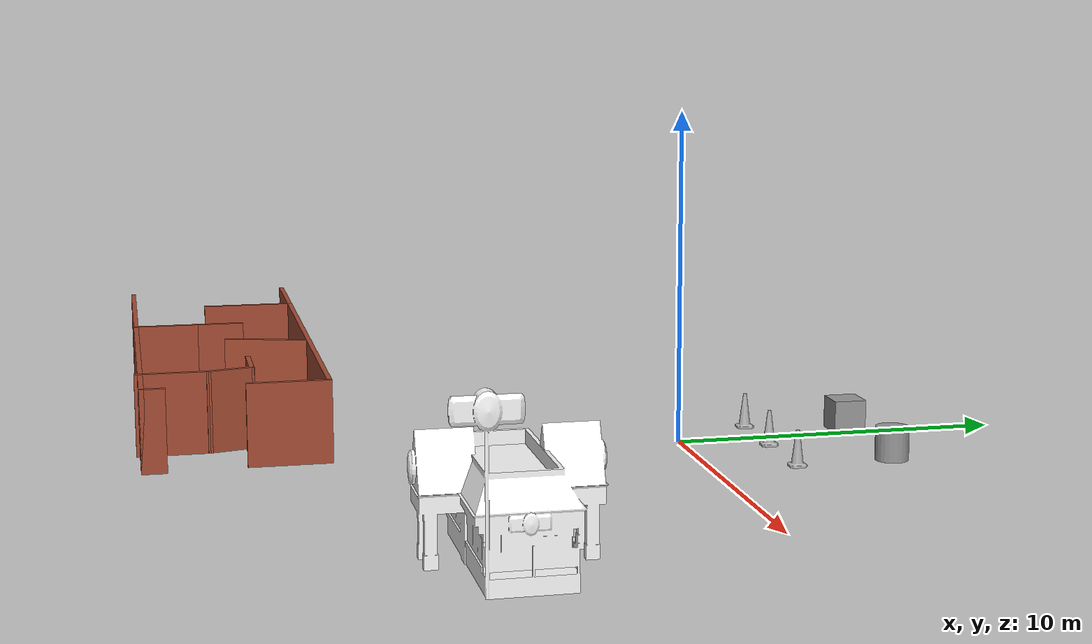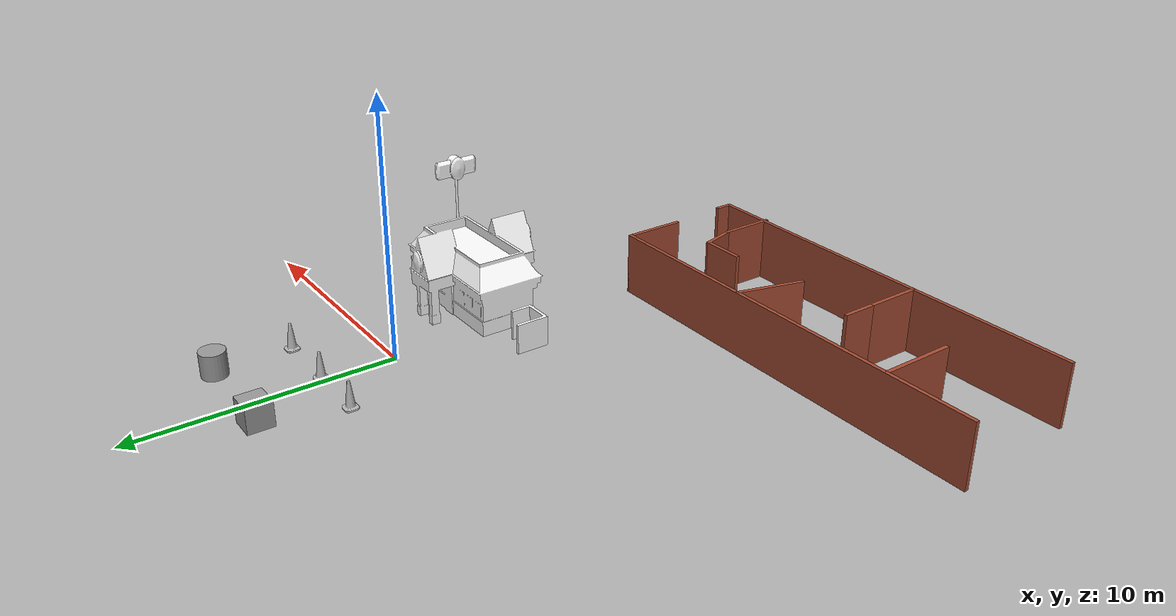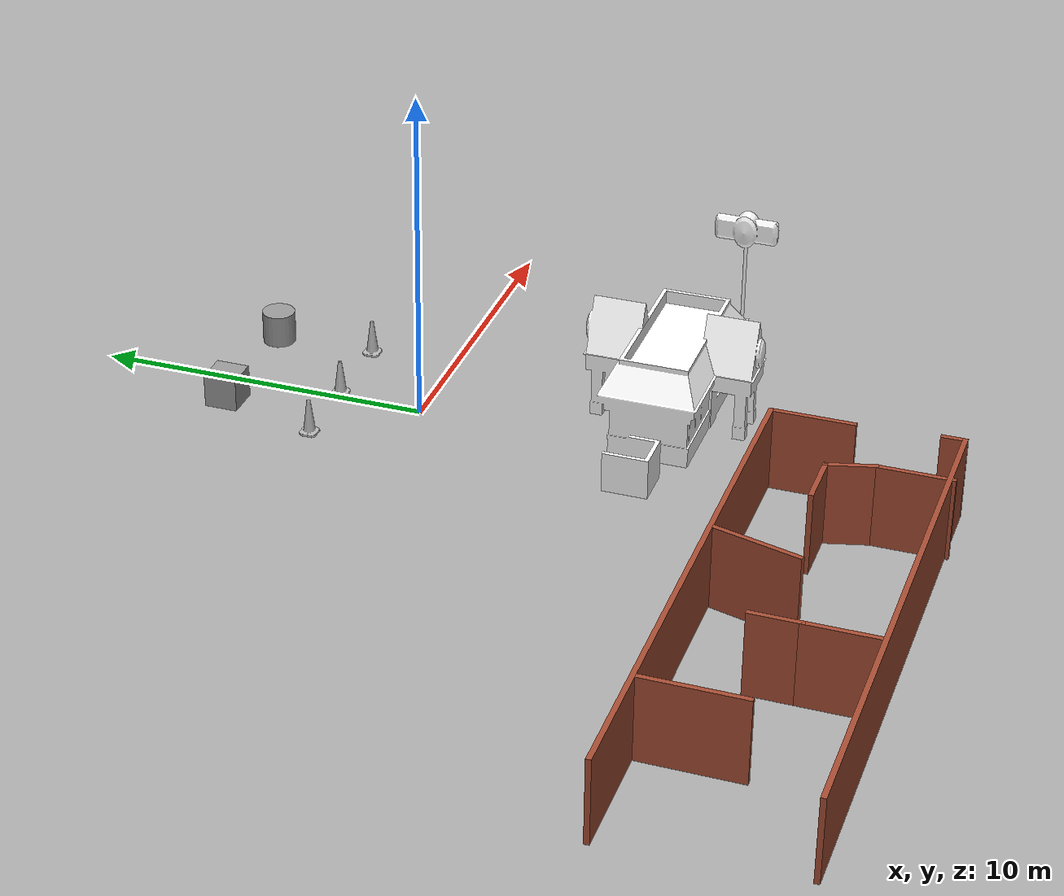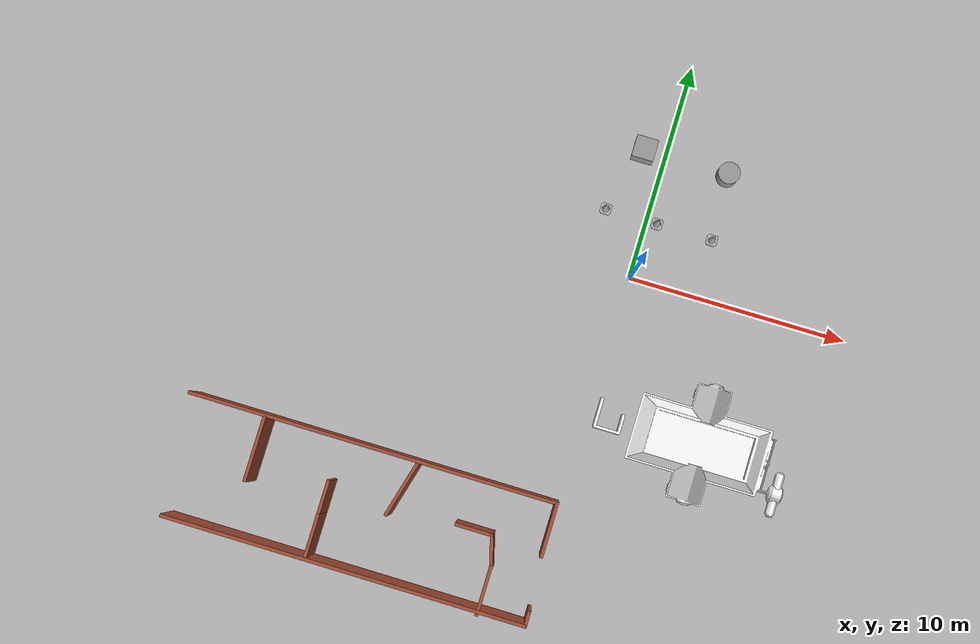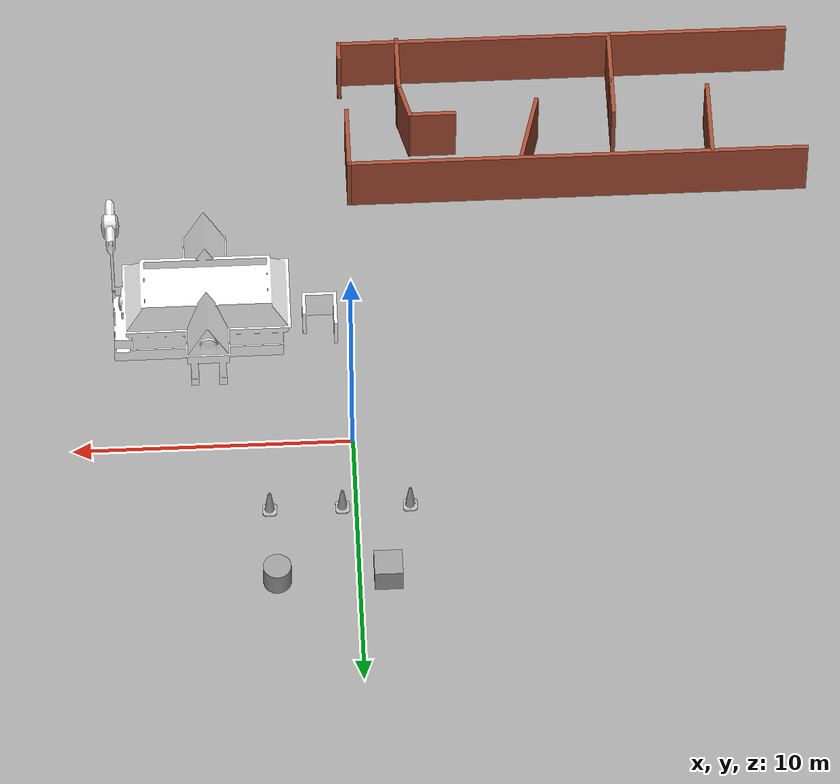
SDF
<?xml version='1.0'?>
<sdf version='1.6'>
  <model name='final_project_practice'>
    <link name='link_0'>
      <pose frame=''>-1.02539 5.71429 0.357143 0 -0 0</pose>
      <inertial>
        <mass>1</mass>
        <inertia>
          <ixx>0.166667</ixx>
          <ixy>0</ixy>
          <ixz>0</ixz>
          <iyy>0.166667</iyy>
          <iyz>0</iyz>
          <izz>0.166667</izz>
        </inertia>
      </inertial>
      <visual name='visual'>
        <pose frame=''>0 0 0 0 -0 0</pose>
        <geometry>
          <box>
            <size>1 1 1</size>
          </box>
        </geometry>
        <material>
          <lighting>1</lighting>
          <script>
            <uri>file://media/materials/scripts/gazebo.material</uri>
            <name>Gazebo/Grey</name>
          </script>
          <ambient>0.3 0.3 0.3 1</ambient>
          <diffuse>0.7 0.7 0.7 1</diffuse>
          <specular>0.01 0.01 0.01 1</specular>
          <emissive>0 0 0 1</emissive>
        </material>
        <cast_shadows>1</cast_shadows>
        <transparency>0</transparency>
      </visual>
      <collision name='collision'>
        <laser_retro>0</laser_retro>
        <max_contacts>10</max_contacts>
        <pose frame=''>0 0 0 0 -0 0</pose>
        <geometry>
          <box>
            <size>1 1 1</size>
          </box>
        </geometry>
        <surface>
          <friction>
            <ode>
              <mu>1</mu>
              <mu2>1</mu2>
              <fdir1>0 0 0</fdir1>
              <slip1>0</slip1>
              <slip2>0</slip2>
            </ode>
            <torsional>
              <coefficient>1</coefficient>
              <patch_radius>0</patch_radius>
              <surface_radius>0</surface_radius>
              <use_patch_radius>1</use_patch_radius>
              <ode>
                <slip>0</slip>
              </ode>
            </torsional>
          </friction>
          <bounce>
            <restitution_coefficient>0</restitution_coefficient>
            <threshold>1e+06</threshold>
          </bounce>
          <contact>
            <collide_without_contact>0</collide_without_contact>
            <collide_without_contact_bitmask>1</collide_without_contact_bitmask>
            <collide_bitmask>1</collide_bitmask>
            <ode>
              <soft_cfm>0</soft_cfm>
              <soft_erp>0.2</soft_erp>
              <kp>1e+13</kp>
              <kd>1</kd>
              <max_vel>0.01</max_vel>
              <min_depth>0</min_depth>
            </ode>
            <bullet>
              <split_impulse>1</split_impulse>
              <split_impulse_penetration_threshold>-0.01</split_impulse_penetration_threshold>
              <soft_cfm>0</soft_cfm>
              <soft_erp>0.2</soft_erp>
              <kp>1e+13</kp>
              <kd>1</kd>
            </bullet>
          </contact>
        </surface>
      </collision>
    </link>
    <link name='link_1'>
      <pose frame=''>2.89593 5.71429 0.357143 0 -0 0</pose>
      <inertial>
        <mass>1</mass>
        <inertia>
          <ixx>0.145833</ixx>
          <ixy>0</ixy>
          <ixz>0</ixz>
          <iyy>0.145833</iyy>
          <iyz>0</iyz>
          <izz>0.125</izz>
        </inertia>
      </inertial>
      <visual name='visual'>
        <pose frame=''>0 0 0 0 -0 0</pose>
        <geometry>
          <cylinder>
            <radius>0.5</radius>
            <length>1</length>
          </cylinder>
        </geometry>
        <material>
          <lighting>1</lighting>
          <script>
            <uri>file://media/materials/scripts/gazebo.material</uri>
            <name>Gazebo/Grey</name>
          </script>
          <ambient>0.3 0.3 0.3 1</ambient>
          <diffuse>0.7 0.7 0.7 1</diffuse>
          <specular>0.01 0.01 0.01 1</specular>
          <emissive>0 0 0 1</emissive>
        </material>
        <cast_shadows>1</cast_shadows>
        <transparency>0</transparency>
      </visual>
      <collision name='collision'>
        <laser_retro>0</laser_retro>
        <max_contacts>10</max_contacts>
        <pose frame=''>0 0 0 0 -0 0</pose>
        <geometry>
          <cylinder>
            <radius>0.5</radius>
            <length>1</length>
          </cylinder>
        </geometry>
        <surface>
          <friction>
            <ode>
              <mu>1</mu>
              <mu2>1</mu2>
              <fdir1>0 0 0</fdir1>
              <slip1>0</slip1>
              <slip2>0</slip2>
            </ode>
            <torsional>
              <coefficient>1</coefficient>
              <patch_radius>0</patch_radius>
              <surface_radius>0</surface_radius>
              <use_patch_radius>1</use_patch_radius>
              <ode>
                <slip>0</slip>
              </ode>
            </torsional>
          </friction>
          <bounce>
            <restitution_coefficient>0</restitution_coefficient>
            <threshold>1e+06</threshold>
          </bounce>
          <contact>
            <collide_without_contact>0</collide_without_contact>
            <collide_without_contact_bitmask>1</collide_without_contact_bitmask>
            <collide_bitmask>1</collide_bitmask>
            <ode>
              <soft_cfm>0</soft_cfm>
              <soft_erp>0.2</soft_erp>
              <kp>1e+13</kp>
              <kd>1</kd>
              <max_vel>0.01</max_vel>
              <min_depth>0</min_depth>
            </ode>
            <bullet>
              <split_impulse>1</split_impulse>
              <split_impulse_penetration_threshold>-0.01</split_impulse_penetration_threshold>
              <soft_cfm>0</soft_cfm>
              <soft_erp>0.2</soft_erp>
              <kp>1e+13</kp>
              <kd>1</kd>
            </bullet>
          </contact>
        </surface>
      </collision>
    </link>
    <model name='Construction Cone'>
      <static>1</static>
      <link name='link'>
        <collision name='collision'>
          <geometry>
            <mesh>
              <scale>10 10 10</scale>
              <uri>model://construction_cone/meshes/construction_cone.dae</uri>
            </mesh>
          </geometry>
        </collision>
        <visual name='visual'>
          <geometry>
            <mesh>
              <scale>10 10 10</scale>
              <uri>model://construction_cone/meshes/construction_cone.dae</uri>
            </mesh>
          </geometry>
        </visual>
      </link>
      <pose frame=''>0.478743 2.71429 -0.142857 0 -0 0</pose>
    </model>
    <model name='Construction Cone_0'>
      <static>1</static>
      <link name='link'>
        <collision name='collision'>
          <geometry>
            <mesh>
              <scale>10 10 10</scale>
              <uri>model://construction_cone/meshes/construction_cone.dae</uri>
            </mesh>
          </geometry>
        </collision>
        <visual name='visual'>
          <geometry>
            <mesh>
              <scale>10 10 10</scale>
              <uri>model://construction_cone/meshes/construction_cone.dae</uri>
            </mesh>
          </geometry>
        </visual>
      </link>
      <pose frame=''>-1.92972 2.71429 -0.142857 0 -0 0</pose>
    </model>
    <model name='Construction Cone_1'>
      <static>1</static>
      <link name='link'>
        <collision name='collision'>
          <geometry>
            <mesh>
              <scale>10 10 10</scale>
              <uri>model://construction_cone/meshes/construction_cone.dae</uri>
            </mesh>
          </geometry>
        </collision>
        <visual name='visual'>
          <geometry>
            <mesh>
              <scale>10 10 10</scale>
              <uri>model://construction_cone/meshes/construction_cone.dae</uri>
            </mesh>
          </geometry>
        </visual>
      </link>
      <pose frame=''>3.06434 2.71429 -0.142857 0 -0 0</pose>
    </model>
    <model name='Fast Food'>
      <static>1</static>
      <link name='link'>
        <pose frame=''>0 0 0 0 -0 0</pose>
        <collision name='collision'>
          <geometry>
            <mesh>
              <uri>model://fast_food/meshes/fast_food.dae</uri>
            </mesh>
          </geometry>
        </collision>
        <visual name='visual'>
          <geometry>
            <mesh>
              <uri>model://fast_food/meshes/fast_food.dae</uri>
            </mesh>
          </geometry>
          <material>
            <script>
              <uri>model://fast_food/materials/scripts</uri>
              <uri>model://fast_food/materials/textures</uri>
              <name>FastFood/Diffuse</name>
            </script>
          </material>
        </visual>
      </link>
      <pose frame=''>5.03734 -6.28571 -0.142857 0 -0 0</pose>
    </model>
    <model name='maze1'>
      <pose frame=''>-8.52126 -13.2857 -0.142857 0 -0 0</pose>
      <link name='Wall_0'>
        <collision name='Wall_0_Collision'>
          <geometry>
            <box>
              <size>16.75 0.15 2.5</size>
            </box>
          </geometry>
          <pose frame=''>0 0 1.25 0 -0 0</pose>
        </collision>
        <visual name='Wall_0_Visual'>
          <pose frame=''>0 0 1.25 0 -0 0</pose>
          <geometry>
            <box>
              <size>16.75 0.15 2.5</size>
            </box>
          </geometry>
          <material>
            <script>
              <uri>file://media/materials/scripts/gazebo.material</uri>
              <name>Gazebo/Bricks</name>
            </script>
            <ambient>1 1 1 1</ambient>
          </material>
        </visual>
        <pose frame=''>-0.087923 2.7514 0 0 -0 0</pose>
      </link>
      <link name='Wall_1'>
        <collision name='Wall_1_Collision'>
          <geometry>
            <box>
              <size>2.5 0.15 2.5</size>
            </box>
          </geometry>
          <pose frame=''>0 0 1.25 0 -0 0</pose>
        </collision>
        <visual name='Wall_1_Visual'>
          <pose frame=''>0 0 1.25 0 -0 0</pose>
          <geometry>
            <box>
              <size>2.5 0.15 2.5</size>
            </box>
          </geometry>
          <material>
            <script>
              <uri>file://media/materials/scripts/gazebo.material</uri>
              <name>Gazebo/Bricks</name>
            </script>
            <ambient>1 1 1 1</ambient>
          </material>
        </visual>
        <pose frame=''>8.21208 1.5764 0 0 0 -1.5708</pose>
      </link>
      <link name='Wall_11'>
        <collision name='Wall_11_Collision'>
          <geometry>
            <box>
              <size>2.75 0.15 2.5</size>
            </box>
          </geometry>
          <pose frame=''>0 0 1.25 0 -0 0</pose>
        </collision>
        <visual name='Wall_11_Visual'>
          <pose frame=''>0 0 1.25 0 -0 0</pose>
          <geometry>
            <box>
              <size>2.75 0.15 2.5</size>
            </box>
          </geometry>
          <material>
            <script>
              <uri>file://media/materials/scripts/gazebo.material</uri>
              <name>Gazebo/Bricks</name>
            </script>
            <ambient>1 1 1 1</ambient>
          </material>
        </visual>
        <pose frame=''>1.61756 1.45007 0 0 0 -1.8326</pose>
      </link>
      <link name='Wall_13'>
        <collision name='Wall_13_Collision'>
          <geometry>
            <box>
              <size>1.75 0.15 2.5</size>
            </box>
          </geometry>
          <pose frame=''>0 0 1.25 0 -0 0</pose>
        </collision>
        <visual name='Wall_13_Visual'>
          <pose frame=''>0 0 1.25 0 -0 0</pose>
          <geometry>
            <box>
              <size>1.75 0.15 2.5</size>
            </box>
          </geometry>
          <material>
            <script>
              <uri>file://media/materials/scripts/gazebo.material</uri>
              <name>Gazebo/Bricks</name>
            </script>
            <ambient>1 1 1 1</ambient>
          </material>
        </visual>
        <pose frame=''>5.11138 0.652596 0 0 -0 0</pose>
      </link>
      <link name='Wall_14'>
        <collision name='Wall_14_Collision'>
          <geometry>
            <box>
              <size>1.5 0.15 2.5</size>
            </box>
          </geometry>
          <pose frame=''>0 0 1.25 0 -0 0</pose>
        </collision>
        <visual name='Wall_14_Visual'>
          <pose frame=''>0 0 1.25 0 -0 0</pose>
          <geometry>
            <box>
              <size>1.5 0.15 2.5</size>
            </box>
          </geometry>
          <material>
            <script>
              <uri>file://media/materials/scripts/gazebo.material</uri>
              <name>Gazebo/Bricks</name>
            </script>
            <ambient>1 1 1 1</ambient>
          </material>
        </visual>
        <pose frame=''>6.08609 0.000596 0 0 0 -1.309</pose>
      </link>
      <link name='Wall_18'>
        <collision name='Wall_18_Collision'>
          <geometry>
            <box>
              <size>2.25 0.15 2.5</size>
            </box>
          </geometry>
          <pose frame=''>0 0 1.25 0 -0 0</pose>
        </collision>
        <visual name='Wall_18_Visual'>
          <pose frame=''>0 0 1.25 0 -0 0</pose>
          <geometry>
            <box>
              <size>2.25 0.15 2.5</size>
            </box>
          </geometry>
          <material>
            <script>
              <uri>file://media/materials/scripts/gazebo.material</uri>
              <name>Gazebo/Bricks</name>
            </script>
            <ambient>1 1 1 1</ambient>
          </material>
        </visual>
        <pose frame=''>6.26079 -1.7014 0 0 0 -1.5708</pose>
      </link>
      <link name='Wall_3'>
        <collision name='Wall_3_Collision'>
          <geometry>
            <box>
              <size>16.5 0.15 2.5</size>
            </box>
          </geometry>
          <pose frame=''>0 0 1.25 0 -0 0</pose>
        </collision>
        <visual name='Wall_3_Visual'>
          <pose frame=''>0 0 1.25 0 -0 0</pose>
          <geometry>
            <box>
              <size>16.5 0.15 2.5</size>
            </box>
          </geometry>
          <material>
            <script>
              <uri>file://media/materials/scripts/gazebo.material</uri>
              <name>Gazebo/Bricks</name>
            </script>
            <ambient>1 1 1 1</ambient>
          </material>
        </visual>
        <pose frame=''>0.212922 -2.6477 0 0 -0 0</pose>
      </link>
      <link name='Wall_4'>
        <collision name='Wall_4_Collision'>
          <geometry>
            <box>
              <size>0.75 0.15 2.5</size>
            </box>
          </geometry>
          <pose frame=''>0 0 1.25 0 -0 0</pose>
        </collision>
        <visual name='Wall_4_Visual'>
          <pose frame=''>0 0 1.25 0 -0 0</pose>
          <geometry>
            <box>
              <size>0.75 0.15 2.5</size>
            </box>
          </geometry>
          <material>
            <script>
              <uri>file://media/materials/scripts/gazebo.material</uri>
              <name>Gazebo/Bricks</name>
            </script>
            <ambient>1 1 1 1</ambient>
          </material>
        </visual>
        <pose frame=''>8.38792 -2.3477 0 0 -0 1.5708</pose>
      </link>
      <link name='Wall_6'>
        <collision name='Wall_6_Collision'>
          <geometry>
            <box>
              <size>3 0.15 2.5</size>
            </box>
          </geometry>
          <pose frame=''>0 0 1.25 0 -0 0</pose>
        </collision>
        <visual name='Wall_6_Visual'>
          <pose frame=''>0 0 1.25 0 -0 0</pose>
          <geometry>
            <box>
              <size>3 0.15 2.5</size>
            </box>
          </geometry>
          <material>
            <script>
              <uri>file://media/materials/scripts/gazebo.material</uri>
              <name>Gazebo/Bricks</name>
            </script>
            <ambient>1 1 1 1</ambient>
          </material>
        </visual>
        <pose frame=''>-4.98116 1.26557 0 0 0 -1.5708</pose>
      </link>
      <link name='Wall_8'>
        <collision name='Wall_8_Collision'>
          <geometry>
            <box>
              <size>2.25 0.15 2.5</size>
            </box>
          </geometry>
          <pose frame=''>0 0 1.25 0 -0 0</pose>
        </collision>
        <visual name='Wall_8_Visual'>
          <pose frame=''>0 0 1.25 0 -0 0</pose>
          <geometry>
            <box>
              <size>2.25 0.15 2.5</size>
            </box>
          </geometry>
          <material>
            <script>
              <uri>file://media/materials/scripts/gazebo.material</uri>
              <name>Gazebo/Bricks</name>
            </script>
            <ambient>1 1 1 1</ambient>
          </material>
        </visual>
        <pose frame=''>-1.51357 -1.5977 0 0 -0 1.5708</pose>
      </link>
      <link name='Wall_9'>
        <collision name='Wall_9_Collision'>
          <geometry>
            <box>
              <size>1.5 0.15 2.5</size>
            </box>
          </geometry>
          <pose frame=''>0 0 1.25 0 -0 0</pose>
        </collision>
        <visual name='Wall_9_Visual'>
          <pose frame=''>0 0 1.25 0 -0 0</pose>
          <geometry>
            <box>
              <size>1.5 0.15 2.5</size>
            </box>
          </geometry>
          <material>
            <script>
              <uri>file://media/materials/scripts/gazebo.material</uri>
              <name>Gazebo/Bricks</name>
            </script>
            <ambient>1 1 1 1</ambient>
          </material>
        </visual>
        <pose frame=''>-1.51357 0.127297 0 0 -0 1.5708</pose>
      </link>
      <static>1</static>
    </model>
    <static>0</static>
    <allow_auto_disable>1</allow_auto_disable>
  </model>
</sdf>
